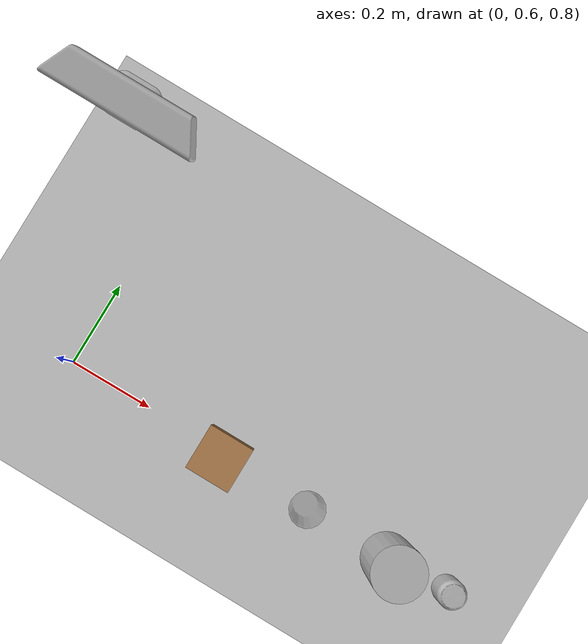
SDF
<sdf version="1.6">
 <world name="default">
  <light name="sun" type="directional">
   <pose>0 0 10 0 -0 0</pose>
   <diffuse>0.8 0.8 0.8 1</diffuse>
   <specular>0.2 0.2 0.2 1</specular>
   <attenuation>
    <range>1000</range>
    <constant>0.9</constant>
    <linear>0.01</linear>
    <quadratic>0.001</quadratic>
   </attenuation>
   <direction>-0.5 0.1 -0.9</direction>
  </light>
  <model name="ground_plane">
   <static>1</static>
   <link name="link">
    <collision name="collision">
     <geometry><plane><normal>0 0 1</normal><size>100 100</size></plane></geometry>
     <surface><friction><ode><mu>100</mu><mu2>50</mu2></ode></friction></surface>
    </collision>
    <visual name="visual">
     <cast_shadows>0</cast_shadows>
     <geometry><plane><normal>0 0 1</normal><size>100 100</size></plane></geometry>
     <material>
      <script><uri>file://media/materials/scripts/gazebo.material</uri><name>Gazebo/Grey</name></script>
     </material>
    </visual>
   </link>
  </model>
  <gravity>0 0 -9.8</gravity>
  <magnetic_field>6e-06 2.3e-05 -4.2e-05</magnetic_field>
  <atmosphere type="adiabatic"/>
  <physics name="default_physics" default="0" type="ode">
   <max_step_size>0.001</max_step_size>
   <real_time_factor>1</real_time_factor>
   <real_time_update_rate>1000</real_time_update_rate>
  </physics>
  <scene><ambient>0.4 0.4 0.4 1</ambient><background>0.7 0.7 0.7 1</background><shadows>1</shadows></scene>
  <spherical_coordinates>
   <surface_model>EARTH_WGS84</surface_model>
   <latitude_deg>0</latitude_deg>
   <longitude_deg>0</longitude_deg>
   <elevation>0</elevation>
   <heading_deg>0</heading_deg>
  </spherical_coordinates>
  <model name="wood_cube_10cm">
   <pose>0.4 0.6 0.963753 -6.4e-05 5.5e-05 -9.6e-05</pose>
   <link name="link">
    <pose>0 0 0.05 0 -0 0</pose>
    <inertial>
     <mass>0.5167</mass>
     <inertia>
      <ixx>0.000861167</ixx>
      <ixy>0</ixy>
      <ixz>0</ixz>
      <iyy>0.000861167</iyy>
      <iyz>0</iyz>
      <izz>0.000861167</izz>
     </inertia>
    </inertial>
    <collision name="collision">
     <geometry><box><size>0.1 0.1 0.1</size></box></geometry>
     <surface>
      <contact>
       <poissons_ratio>0.347</poissons_ratio>
       <elastic_modulus>8.8e+09</elastic_modulus>
       <ode><kp>100000</kp><kd>100</kd><max_vel>100</max_vel><min_depth>0.001</min_depth></ode>
      </contact>
      <friction>
       <torsional>
        <coefficient>1</coefficient>
        <use_patch_radius>0</use_patch_radius>
        <surface_radius>0.01</surface_radius>
       </torsional>
      </friction>
     </surface>
    </collision>
    <visual name="visual">
     <geometry><box><size>0.1 0.1 0.1</size></box></geometry>
     <material>
      <script><uri>file://media/materials/scripts/gazebo.material</uri><name>Gazebo/Wood</name></script>
     </material>
    </visual>
   </link>
  </model>
  <model name="kinect">
   <pose>0 1 1.6 0 0.25 -1.57</pose>
   <link name="link">
    <inertial>
     <mass>0.1</mass>
     <inertia><ixx>1</ixx><ixy>0</ixy><ixz>0</ixz><iyy>1</iyy><iyz>0</iyz><izz>1</izz></inertia>
    </inertial>
    <collision name="collision"><geometry><box><size>0.073 0.276 0.072</size></box></geometry></collision>
    <visual name="visual"><geometry><mesh><uri>model://kinect/meshes/kinect.dae</uri></mesh></geometry></visual>
    <sensor name="camera" type="depth">
     <update_rate>20</update_rate>
     <camera name="__default__">
      <horizontal_fov>1.0472</horizontal_fov>
      <image><width>640</width><height>480</height><format>R8G8B8</format></image>
      <clip><near>0.05</near><far>3</far></clip>
     </camera>
     <plugin name="camera_plugin" filename="libgazebo_ros_openni_kinect.so">
      <baseline>0.2</baseline>
      <alwaysOn>true</alwaysOn>
      <updateRate>0.0</updateRate>
      <cameraName>camera_ir</cameraName>
      <imageTopicName>/camera/depth/image_raw</imageTopicName>
      <cameraInfoTopicName>/camera/depth/camera_info</cameraInfoTopicName>
      <depthImageTopicName>/camera/depth/image_raw</depthImageTopicName>
      <depthImageInfoTopicName>/camera/depth/camera_info</depthImageInfoTopicName>
      <pointCloudTopicName>/camera/depth/points</pointCloudTopicName>
      <frameName>camera_link</frameName>
      <pointCloudCutoff>0.05</pointCloudCutoff>
      <distortionK1>0</distortionK1>
      <distortionK2>0</distortionK2>
      <distortionK3>0</distortionK3>
      <distortionT1>0</distortionT1>
      <distortionT2>0</distortionT2>
      <CxPrime>0</CxPrime>
      <Cx>0</Cx>
      <Cy>0</Cy>
      <focalLength>0</focalLength>
      <hackBaseline>0</hackBaseline>
     </plugin>
    </sensor>
    <gravity>0</gravity>
   </link>
   <static>1</static>
  </model>
  <model name="beer">
   <pose>0.8 0.6 1.0 0 0 0</pose>
   <link name="link">
    <pose>0 0 0.115 0 -0 0</pose>
    <inertial>
     <mass>0.39</mass>
     <inertia><ixx>0.00058</ixx><ixy>0</ixy><ixz>0</ixz><iyy>0.00058</iyy><iyz>0</iyz><izz>0.00019</izz></inertia>
    </inertial>
    <collision name="collision">
     <geometry><cylinder><radius>0.055</radius><length>0.23</length></cylinder></geometry>
    </collision>
    <visual name="visual">
     <geometry><cylinder><radius>0.055</radius><length>0.23</length></cylinder></geometry>
     <material>
      <script>
       <uri>model://beer/materials/scripts</uri>
       <uri>model://beer/materials/textures</uri>
       <name>Beer/Diffuse</name>
      </script>
     </material>
    </visual>
   </link>
   <pose>-0.227761 0.378353 0 0 -0 0</pose>
  </model>
  <model name="coke_can">
   <pose>1.0 0.6 1.0 0 0 0</pose>
   <link name="link">
    <inertial>
     <pose>-0.01 -0.012 0.15 0 -0 0</pose>
     <mass>0.39</mass>
     <inertia><ixx>0.00058</ixx><ixy>0</ixy><ixz>0</ixz><iyy>0.00058</iyy><iyz>0</iyz><izz>0.00019</izz></inertia>
    </inertial>
    <collision name="collision">
     <pose>0 0 -0.46 0 -0 0</pose>
     <geometry><mesh><uri>model://coke_can/meshes/coke_can.dae</uri></mesh></geometry>
     <surface>
      <friction><ode><mu>1</mu><mu2>1</mu2></ode></friction>
      <contact><ode><kp>1e+07</kp><kd>1</kd><min_depth>0.001</min_depth><max_vel>0.1</max_vel></ode></contact>
     </surface>
    </collision>
    <visual name="visual">
     <pose>0 0 -0.46 0 -0 0</pose>
     <geometry><mesh><uri>model://coke_can/meshes/coke_can.dae</uri></mesh></geometry>
    </visual>
   </link>
   <pose>-0.486836 1.31625 0 0 -0 0</pose>
  </model>
  <model name="plastic_cup">
   <pose>0.6 0.6 1.0 0 0 0</pose>
   <link name="link">
    <pose>0 0 0.065 0 -0 0</pose>
    <inertial>
     <mass>0.0599</mass>
     <inertia>
      <ixx>0.000302896</ixx>
      <ixy>0</ixy>
      <ixz>0</ixz>
      <iyy>0.000302896</iyy>
      <iyz>0</iyz>
      <izz>3.28764e-05</izz>
     </inertia>
    </inertial>
    <collision name="collision">
     <geometry><mesh><uri>model://plastic_cup/meshes/plastic_cup.dae</uri></mesh></geometry>
     <surface>
      <contact>
       <poissons_ratio>0.35</poissons_ratio>
       <elastic_modulus>3.10264e+09</elastic_modulus>
       <ode><kp>100000</kp><kd>100</kd><max_vel>100</max_vel><min_depth>0.001</min_depth></ode>
      </contact>
      <friction>
       <torsional>
        <coefficient>1</coefficient>
        <use_patch_radius>0</use_patch_radius>
        <surface_radius>0.01</surface_radius>
       </torsional>
      </friction>
     </surface>
    </collision>
    <visual name="visual">
     <geometry><mesh><uri>model://plastic_cup/meshes/plastic_cup.dae</uri></mesh></geometry>
     <material>
      <script><uri>file://media/materials/scripts/gazebo.material</uri><name>Gazebo/GreyTransparent</name></script>
     </material>
    </visual>
   </link>
   <pose>-0.28067 -1.23193 0 0 -0 0</pose>
  </model>
  <light name="user_directional_light_0" type="directional">
   <pose>0 1.0 1.5 -1.57 0 0</pose>
   <diffuse>0.5 0.5 0.5 1</diffuse>
   <specular>0.1 0.1 0.1 1</specular>
   <direction>0.1 0.1 -0.9</direction>
   <attenuation>
    <range>20</range>
    <constant>0.5</constant>
    <linear>0.01</linear>
    <quadratic>0.001</quadratic>
   </attenuation>
  </light>
 </world>
</sdf>
